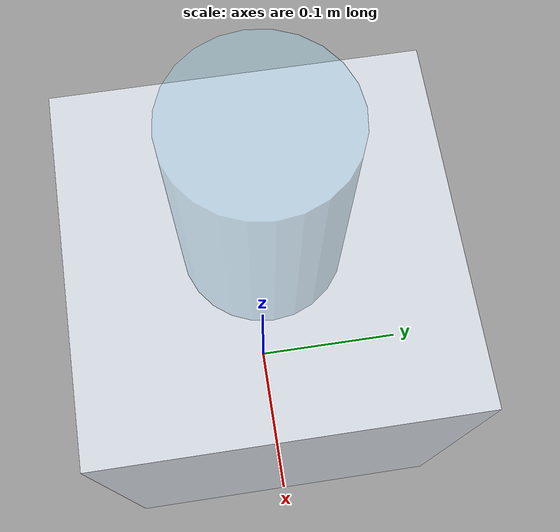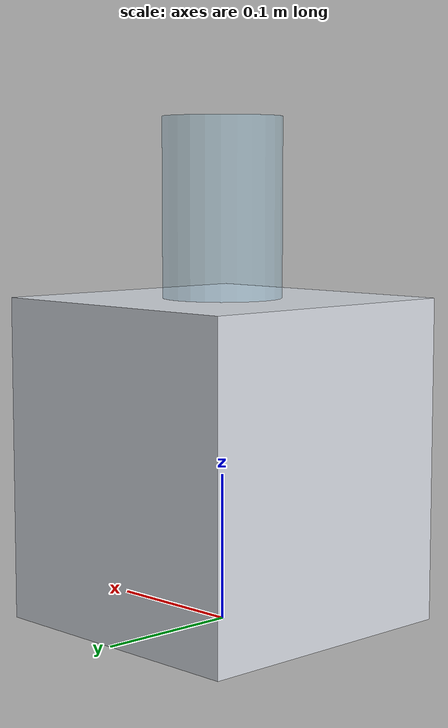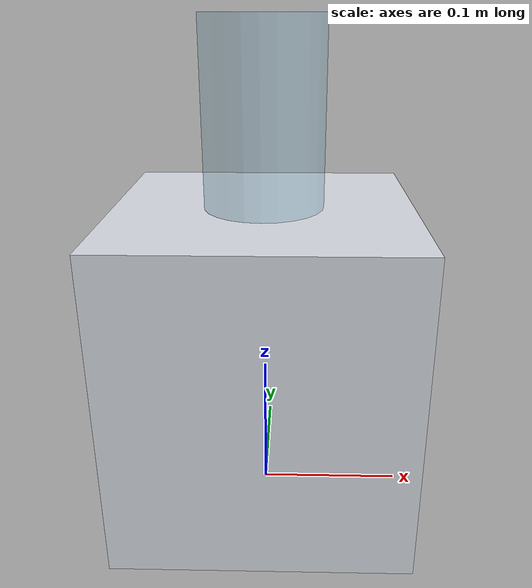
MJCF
<?xml version="1.0" encoding="utf-8"?>
<mujoco model="freeze_dryer">
  <compiler angle="radian" autolimits="true"/>
  <default>
    <default class="body"><geom contype="1" conaffinity="1"/></default>
  </default>
  <worldbody>
    <body name="base">
      <geom type="box" size="0.1 0.1 0.11" pos="0 0 0.11" rgba="0.85 0.87 0.9 1" class="body"/>
      <geom type="box" size="0.03 0.005000000000000001 0.0275" pos="-0.05 -0.09000000000000001 0.165" rgba="0.6 0.9 0.9 0.7" class="body"/>
      <body name="chamber_dome" pos="0 0 0.28">
        <joint name="chamber_dome_joint" type="slide" axis="0 0 1" range="0 0.08" damping="1.0" frictionloss="0.5"/>
  <geom type="cylinder" size="0.04 0.06" pos="0 0 0" rgba="0.6 0.8 0.9 0.4" class="body"/>
      </body>
    </body>
  </worldbody>
</mujoco>
